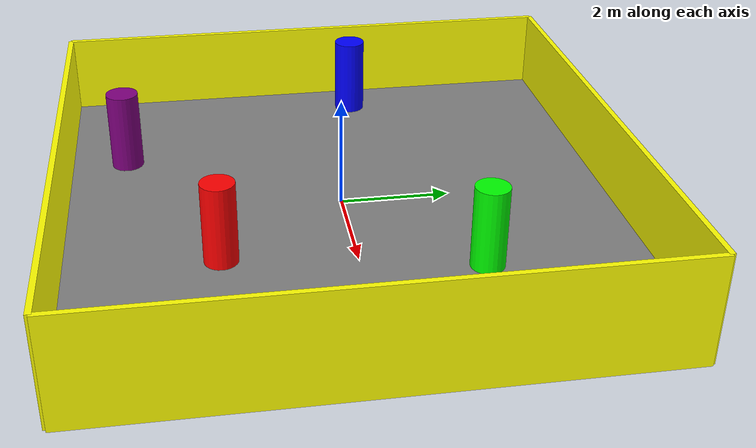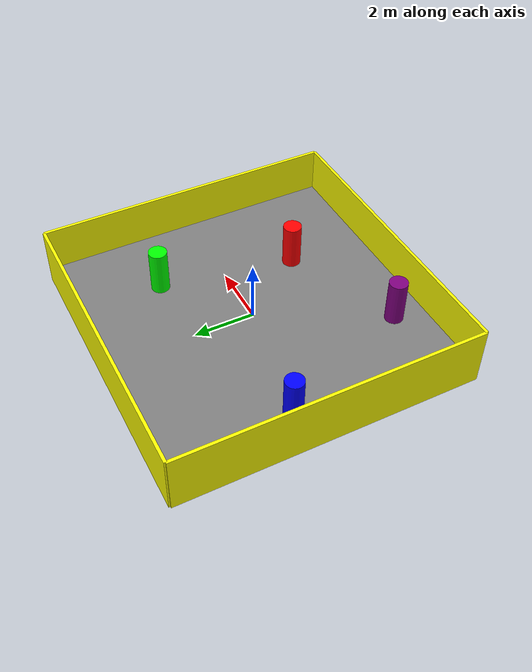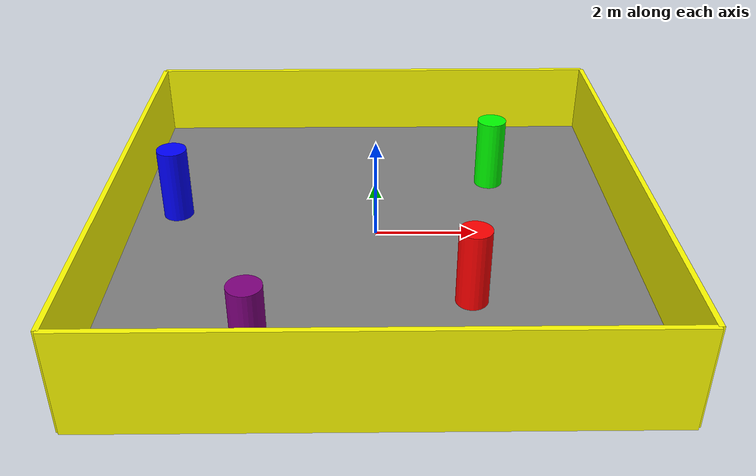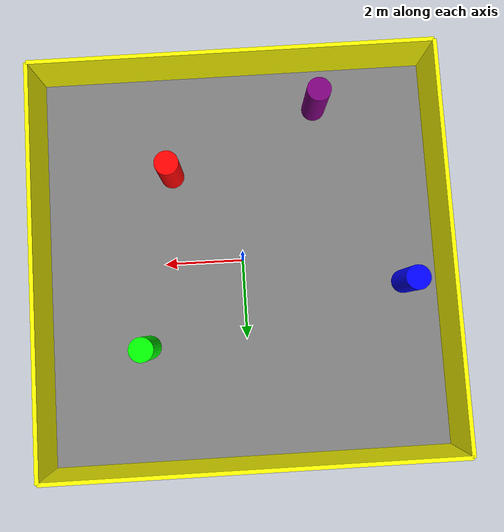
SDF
<sdf version="1.7">
 <world name="indoor_world">
  <physics name="1ms" type="ignored">
   <max_step_size>0.001</max_step_size>
   <real_time_factor>1.0</real_time_factor>
   <gravity>0 0 -9.8</gravity>
   <ode><solver><type>quick</type><iters>100</iters></solver></ode>
  </physics>
  <include><uri>https://fuel.gazebosim.org/1.0/OpenRobotics/models/Sun</uri></include>
  <model name="floor">
   <static>true</static>
   <link name="link">
    <visual name="visual">
     <geometry><box><size>10 10 0.1</size></box></geometry>
     <material><ambient>0.5 0.5 0.5 1</ambient><diffuse>0.5 0.5 0.5 1</diffuse></material>
    </visual>
    <collision name="collision">
     <geometry><box><size>10 10 0.1</size></box></geometry>
     <surface>
      <friction><ode><mu>100</mu><mu2>50</mu2></ode></friction>
      <contact><ode><kp>1e5</kp><kd>1</kd></ode></contact>
     </surface>
    </collision>
    <pose>0 0 -0.05 0 0 0</pose>
   </link>
  </model>
  <model name="wall1">
   <static>true</static>
   <link name="link">
    <visual name="visual">
     <geometry><box><size>10 0.1 2</size></box></geometry>
     <material><ambient>1.0 1.0 0.0 1</ambient><diffuse>1.0 1.0 0.0 1</diffuse></material>
    </visual>
    <collision name="collision"><geometry><box><size>10 0.1 3</size></box></geometry></collision>
    <pose>0 5 0.5 0 0 0</pose>
   </link>
  </model>
  <model name="wall2">
   <static>true</static>
   <link name="link">
    <visual name="visual">
     <geometry><box><size>10 0.1 2</size></box></geometry>
     <material><ambient>1.0 1.0 0.0 1</ambient><diffuse>1.0 1.0 0.0 1</diffuse></material>
    </visual>
    <collision name="collision"><geometry><box><size>10 0.1 3</size></box></geometry></collision>
    <pose>0 -5 0.5 0 0 0</pose>
   </link>
  </model>
  <model name="wall3">
   <static>true</static>
   <link name="link">
    <visual name="visual">
     <geometry><box><size>0.1 10 2</size></box></geometry>
     <material><ambient>1.0 1.0 0.0 1</ambient><diffuse>1.0 1.0 0.0 1</diffuse></material>
    </visual>
    <collision name="collision"><geometry><box><size>0.1 10 3</size></box></geometry></collision>
    <pose>5 0 0.5 0 0 0</pose>
   </link>
  </model>
  <model name="wall4">
   <static>true</static>
   <link name="link">
    <visual name="visual">
     <geometry><box><size>0.1 10 2</size></box></geometry>
     <material><ambient>1.0 1.0 0.0 1</ambient><diffuse>1.0 1.0 0.0 1</diffuse></material>
    </visual>
    <collision name="collision"><geometry><box><size>0.1 10 3</size></box></geometry></collision>
    <pose>-5 0 0.5 0 0 0</pose>
   </link>
  </model>
  <model name="pillar1">
   <static>true</static>
   <link name="link">
    <visual name="visual">
     <geometry><cylinder><radius>0.3</radius><length>2</length></cylinder></geometry>
     <material><ambient>1.0 0.0 0.0 1</ambient><diffuse>1.0 0.0 0.0 1</diffuse></material>
    </visual>
    <collision name="collision">
     <geometry><cylinder><radius>0.3</radius><length>3</length></cylinder></geometry>
    </collision>
    <pose>0 0 0.5 0 0 0</pose>
   </link>
   <pose>1.7 -2.3 0 0 0 0</pose>
  </model>
  <model name="pillar2">
   <static>true</static>
   <link name="link">
    <visual name="visual">
     <geometry><cylinder><radius>0.3</radius><length>2</length></cylinder></geometry>
     <material><ambient>0.0 0.0 1.0 1</ambient><diffuse>0.0 0.0 1.0 1</diffuse></material>
    </visual>
    <collision name="collision">
     <geometry><cylinder><radius>0.3</radius><length>3</length></cylinder></geometry>
    </collision>
    <pose>0 0 0.5 0 0 0</pose>
   </link>
   <pose>-4.1 0.8 0 0 0 0</pose>
  </model>
  <model name="pillar3">
   <static>true</static>
   <link name="link">
    <visual name="visual">
     <geometry><cylinder><radius>0.3</radius><length>2</length></cylinder></geometry>
     <material><ambient>0.0 1.0 0.0 1</ambient><diffuse>0.0 1.0 0.0 1</diffuse></material>
    </visual>
    <collision name="collision">
     <geometry><cylinder><radius>0.3</radius><length>3</length></cylinder></geometry>
    </collision>
    <pose>0 0 0.5 0 0 0</pose>
   </link>
   <pose>2.5 2.1 0 0 0 0</pose>
  </model>
  <model name="pillar4">
   <static>true</static>
   <link name="link">
    <visual name="visual">
     <geometry><cylinder><radius>0.3</radius><length>2</length></cylinder></geometry>
     <material><ambient>0.5 0.0 0.5 1</ambient><diffuse>0.5 0.0 0.5 1</diffuse></material>
    </visual>
    <collision name="collision">
     <geometry><cylinder><radius>0.3</radius><length>3</length></cylinder></geometry>
    </collision>
    <pose>0 0 0.5 0 0 0</pose>
   </link>
   <pose>-2.1 -3.9 0 0 0 0</pose>
  </model>
  <plugin filename="libignition-gazebo-physics-system.so" name="ignition::gazebo::systems::Physics"/>
  <plugin filename="libignition-gazebo-user-commands-system.so" name="ignition::gazebo::systems::UserCommands"/>
  <plugin filename="libignition-gazebo-scene-broadcaster-system.so" name="ignition::gazebo::systems::SceneBroadcaster"/>
  <plugin filename="libignition-gazebo-sensors-system.so" name="ignition::gazebo::systems::Sensors"/>
 </world>
</sdf>
